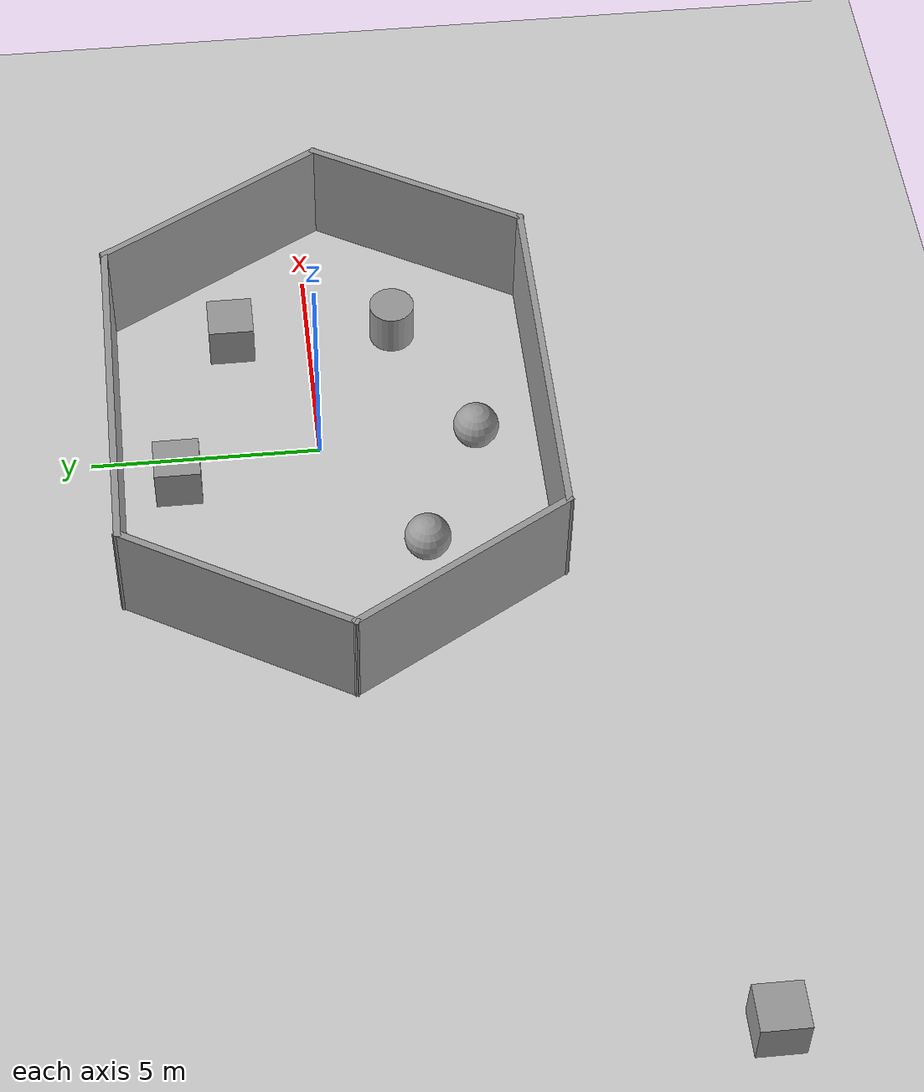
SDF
<sdf version="1.7">
 <world name="default">
  <light name="sun" type="directional">
   <pose>0 0 10 0 -0 0</pose>
   <diffuse>0.8 0.8 0.8 1</diffuse>
   <specular>0.2 0.2 0.2 1</specular>
   <attenuation>
    <range>1000</range>
    <constant>0.9</constant>
    <linear>0.01</linear>
    <quadratic>0.001</quadratic>
   </attenuation>
   <direction>-0.5 0.1 -0.9</direction>
   <spot><inner_angle>0</inner_angle><outer_angle>0</outer_angle><falloff>0</falloff></spot>
  </light>
  <model name="ground_plane">
   <static>1</static>
   <link name="link">
    <collision name="collision">
     <geometry><plane><normal>0 0 1</normal><size>100 100</size></plane></geometry>
     <surface><friction><ode><mu>100</mu><mu2>50</mu2></ode></friction></surface>
    </collision>
    <visual name="visual">
     <cast_shadows>0</cast_shadows>
     <geometry><plane><normal>0 0 1</normal><size>100 100</size></plane></geometry>
     <material>
      <script><uri>file://media/materials/scripts/gazebo.material</uri><name>Gazebo/Grey</name></script>
     </material>
    </visual>
   </link>
  </model>
  <gravity>0 0 -9.8</gravity>
  <magnetic_field>6e-06 2.3e-05 -4.2e-05</magnetic_field>
  <atmosphere type="adiabatic"/>
  <physics type="ode">
   <max_step_size>0.001</max_step_size>
   <real_time_factor>1</real_time_factor>
   <real_time_update_rate>1000</real_time_update_rate>
  </physics>
  <scene><ambient>0.4 0.4 0.4 1</ambient><background>0.7 0.7 0.7 1</background><shadows>1</shadows></scene>
  <audio><device>default</device></audio>
  <spherical_coordinates>
   <surface_model>EARTH_WGS84</surface_model>
   <latitude_deg>0</latitude_deg>
   <longitude_deg>0</longitude_deg>
   <elevation>0</elevation>
   <heading_deg>0</heading_deg>
  </spherical_coordinates>
  <model name="Untitled_0">
   <pose>0.122433 -0.240064 0 0 -0 0</pose>
   <link name="Wall_24">
    <collision name="Wall_24_Collision">
     <geometry><box><size>5.5 0.15 2.5</size></box></geometry>
     <pose>0 0 1.25 0 -0 0</pose>
    </collision>
    <visual name="Wall_24_Visual">
     <pose>0 0 1.25 0 -0 0</pose>
     <geometry><box><size>5.5 0.15 2.5</size></box></geometry>
     <material>
      <script><uri>file://media/materials/scripts/gazebo.material</uri><name>Gazebo/Grey</name></script>
      <ambient>1 1 1 1</ambient>
     </material>
     <meta><layer>0</layer></meta>
    </visual>
    <pose>-5.325 2.31662 0 0 -0 -2.0944</pose>
   </link>
   <link name="Wall_25">
    <collision name="Wall_25_Collision">
     <geometry><box><size>5.5 0.15 2.5</size></box></geometry>
     <pose>0 0 1.25 0 -0 0</pose>
    </collision>
    <visual name="Wall_25_Visual">
     <pose>0 0 1.25 0 -0 0</pose>
     <geometry><box><size>5.5 0.15 2.5</size></box></geometry>
     <material>
      <script><uri>file://media/materials/scripts/gazebo.material</uri><name>Gazebo/Grey</name></script>
      <ambient>1 1 1 1</ambient>
     </material>
     <meta><layer>0</layer></meta>
    </visual>
    <pose>-5.325 -2.31662 0 0 -0 -1.0472</pose>
   </link>
   <link name="Wall_26">
    <collision name="Wall_26_Collision">
     <geometry><box><size>8.25 0.15 2.5</size></box></geometry>
     <pose>0 0 1.25 0 -0 0</pose>
    </collision>
    <visual name="Wall_26_Visual">
     <pose>0 0 1.25 0 -0 0</pose>
     <geometry><box><size>8.25 0.15 2.5</size></box></geometry>
     <material>
      <script><uri>file://media/materials/scripts/gazebo.material</uri><name>Gazebo/Grey</name></script>
      <ambient>1 1 1 1</ambient>
     </material>
     <meta><layer>0</layer></meta>
    </visual>
    <pose>0.0625 -4.63324 0 0 -0 0</pose>
   </link>
   <link name="Wall_27">
    <collision name="Wall_27_Collision">
     <geometry><box><size>5.25 0.15 2.5</size></box></geometry>
     <pose>0 0 1.25 0 -0 0</pose>
    </collision>
    <visual name="Wall_27_Visual">
     <pose>0 0 1.25 0 -0 0</pose>
     <geometry><box><size>5.25 0.15 2.5</size></box></geometry>
     <material>
      <script><uri>file://media/materials/scripts/gazebo.material</uri><name>Gazebo/Grey</name></script>
      <ambient>1 1 1 1</ambient>
     </material>
     <meta><layer>0</layer></meta>
    </visual>
    <pose>5.3875 -2.42487 0 0 -0 1.0472</pose>
   </link>
   <link name="Wall_28">
    <collision name="Wall_28_Collision">
     <geometry><box><size>5.75 0.15 2.5</size></box></geometry>
     <pose>0 0 1.25 0 -0 0</pose>
    </collision>
    <visual name="Wall_28_Visual">
     <pose>0 0 1.25 0 -0 0</pose>
     <geometry><box><size>5.75 0.15 2.5</size></box></geometry>
     <material>
      <script><uri>file://media/materials/scripts/gazebo.material</uri><name>Gazebo/Grey</name></script>
      <ambient>1 1 1 1</ambient>
     </material>
     <meta><layer>0</layer></meta>
    </visual>
    <pose>5.2625 2.20837 0 0 -0 2.0944</pose>
   </link>
   <link name="Wall_29">
    <collision name="Wall_29_Collision">
     <geometry><box><size>8 0.15 2.5</size></box></geometry>
     <pose>0 0 1.25 0 -0 0</pose>
    </collision>
    <visual name="Wall_29_Visual">
     <pose>0 0 1.25 0 -0 0</pose>
     <geometry><box><size>8 0.15 2.5</size></box></geometry>
     <material>
      <script><uri>file://media/materials/scripts/gazebo.material</uri><name>Gazebo/Grey</name></script>
      <ambient>1 1 1 1</ambient>
     </material>
     <meta><layer>0</layer></meta>
    </visual>
    <pose>-0.0625 4.63324 0 0 -0 3.14159</pose>
   </link>
   <static>1</static>
  </model>
  <model name="unit_box">
   <pose>-15.017 -7.37312 0.499995 -1e-05 -0 -0</pose>
   <link name="link">
    <inertial>
     <mass>1</mass>
     <inertia>
      <ixx>0.166667</ixx>
      <ixy>0</ixy>
      <ixz>0</ixz>
      <iyy>0.166667</iyy>
      <iyz>0</iyz>
      <izz>0.166667</izz>
     </inertia>
    </inertial>
    <collision name="collision"><geometry><box><size>1 1 1</size></box></geometry></collision>
    <visual name="visual">
     <geometry><box><size>1 1 1</size></box></geometry>
     <material>
      <script><name>Gazebo/Grey</name><uri>file://media/materials/scripts/gazebo.material</uri></script>
     </material>
    </visual>
   </link>
  </model>
  <model name="unit_sphere">
   <pose>-3.01781 -2.0626 0.5 0 -0 0</pose>
   <link name="link">
    <inertial>
     <mass>1</mass>
     <inertia><ixx>0.1</ixx><ixy>0</ixy><ixz>0</ixz><iyy>0.1</iyy><iyz>0</iyz><izz>0.1</izz></inertia>
    </inertial>
    <collision name="collision"><geometry><sphere><radius>0.5</radius></sphere></geometry></collision>
    <visual name="visual">
     <geometry><sphere><radius>0.5</radius></sphere></geometry>
     <material>
      <script><name>Gazebo/Grey</name><uri>file://media/materials/scripts/gazebo.material</uri></script>
     </material>
    </visual>
   </link>
  </model>
  <model name="unit_cylinder">
   <pose>3.23958 -1.90237 0.499997 3e-06 4e-06 -0</pose>
   <link name="link">
    <inertial>
     <mass>1</mass>
     <inertia><ixx>0.145833</ixx><ixy>0</ixy><ixz>0</ixz><iyy>0.145833</iyy><iyz>0</iyz><izz>0.125</izz></inertia>
    </inertial>
    <collision name="collision">
     <geometry><cylinder><radius>0.5</radius><length>1</length></cylinder></geometry>
    </collision>
    <visual name="visual">
     <geometry><cylinder><radius>0.5</radius><length>1</length></cylinder></geometry>
     <material>
      <script><name>Gazebo/Grey</name><uri>file://media/materials/scripts/gazebo.material</uri></script>
     </material>
    </visual>
   </link>
  </model>
  <model name="unit_box_0">
   <pose>-0.742704 3.13092 0.499995 0 1e-05 0</pose>
   <link name="link">
    <inertial>
     <mass>1</mass>
     <inertia>
      <ixx>0.166667</ixx>
      <ixy>0</ixy>
      <ixz>0</ixz>
      <iyy>0.166667</iyy>
      <iyz>0</iyz>
      <izz>0.166667</izz>
     </inertia>
    </inertial>
    <collision name="collision"><geometry><box><size>1 1 1</size></box></geometry></collision>
    <visual name="visual">
     <geometry><box><size>1 1 1</size></box></geometry>
     <material>
      <script><name>Gazebo/Grey</name><uri>file://media/materials/scripts/gazebo.material</uri></script>
     </material>
    </visual>
   </link>
  </model>
  <model name="unit_box_1">
   <pose>3.24926 1.73291 0.499995 -1e-05 -0 0</pose>
   <link name="link">
    <inertial>
     <mass>1</mass>
     <inertia>
      <ixx>0.166667</ixx>
      <ixy>0</ixy>
      <ixz>0</ixz>
      <iyy>0.166667</iyy>
      <iyz>0</iyz>
      <izz>0.166667</izz>
     </inertia>
    </inertial>
    <collision name="collision"><geometry><box><size>1 1 1</size></box></geometry></collision>
    <visual name="visual">
     <geometry><box><size>1 1 1</size></box></geometry>
     <material>
      <script><name>Gazebo/Grey</name><uri>file://media/materials/scripts/gazebo.material</uri></script>
     </material>
    </visual>
   </link>
  </model>
  <model name="unit_sphere_0">
   <pose>-0.047431 -3.43635 0.5 0 -0 0</pose>
   <link name="link">
    <inertial>
     <mass>1</mass>
     <inertia><ixx>0.1</ixx><ixy>0</ixy><ixz>0</ixz><iyy>0.1</iyy><iyz>0</iyz><izz>0.1</izz></inertia>
    </inertial>
    <collision name="collision"><geometry><sphere><radius>0.5</radius></sphere></geometry></collision>
    <visual name="visual">
     <geometry><sphere><radius>0.5</radius></sphere></geometry>
     <material>
      <script><name>Gazebo/Grey</name><uri>file://media/materials/scripts/gazebo.material</uri></script>
     </material>
    </visual>
   </link>
  </model>
 </world>
</sdf>
